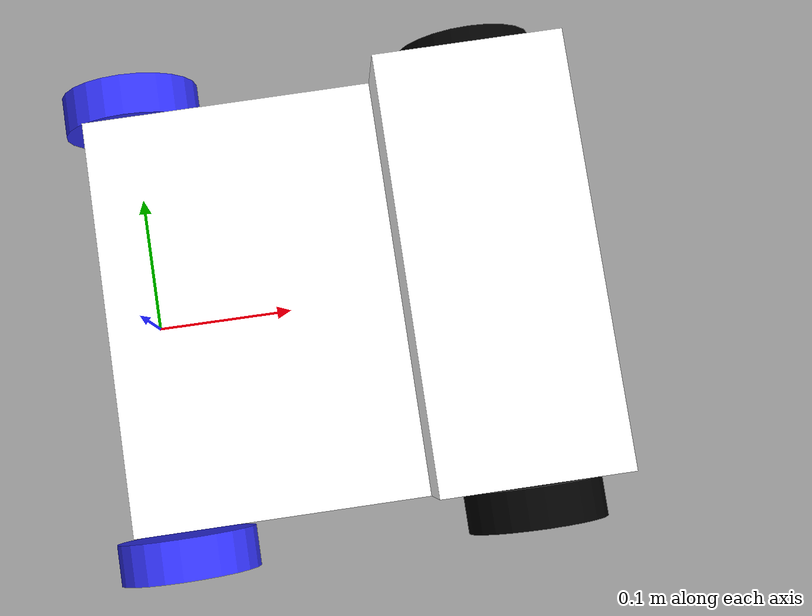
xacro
<?xml version="1.0"?>
<robot xmlns:xacro="http://www.ros.org/wiki/xacro">

    <xacro:include filename="inertial_macros.xacro" />

    <xacro:property name="chassis_mass" value="1.0"/>

    <!--color-->
    <material name="white">
        <color rgba="1 1 1 1" />
    </material>

    <material name="orange">
        <color rgba="1 0.3 0.1 1" />
    </material>

    <material name="blue">
        <color rgba="0.2 0.2 1 1" />
    </material>

    <material name="black">
        <color rgba="0 0 0 1" />
    </material>

    <material name="red">
        <color rgba="1 0 0 1" />
    </material>

    <!--Base link--> <!--1 khối hộp-->
    <link name="base_link">
        <visual>
            <origin xyz="0.14 0 0.015" rpy="0 0 0" />
            <geometry>
                <box size="0.34 0.3 0.09" />
            </geometry>
            <material name="white" />
        </visual>
        <collision>
            <origin xyz="0.14 0 0.015" rpy="0 0 0" />
            <geometry>
                <box size="0.34 0.3 0.09" />
            </geometry>
        </collision>
        <xacro:inertial_box mass="0.5" x="0.34" y="0.3" z="0.09"> <!--chỉnh sửa xyz-->
            <origin xyz="0.14 0 0.015" rpy="0 0 0" />   <!--đã chỉnh sửa xyz-->
        </xacro:inertial_box>
    </link>

    <!-- BASE_FOOTPRINT LINK -->

    <joint name="base_footprint_joint" type="fixed">
        <parent link="base_link"/>
        <child link="base_footprint"/>
        <origin xyz="0 0 0" rpy="0 0 0"/>
    </joint>

    <link name="base_footprint">
    </link>

    <!--Chasis-->
    <joint name="chassis_joint" type="fixed">
        <parent link="base_link" />
        <child link="chassis" />
        <origin xyz="-0.035 0 0" />
    </joint>

    <link name="chassis"> <!--khối trên-->
        <visual>
            <origin xyz="0.28 0 0.05" rpy="0 0 0" />
            <geometry>
                <box size="0.13 0.3 0.15" />
            </geometry>
            <material name="white" />
        </visual>
        <collision>
            <origin xyz="0.28 0 0.05" rpy="0 0 0" />
            <geometry>
                <box size="0.13 0.3 0.15" />
            </geometry>
        </collision>
        <xacro:inertial_box mass="0.5" x="0.13" y="0.3" z="0.15">
            <origin xyz="0.28 0 0.05" rpy="0 0 0" />
        </xacro:inertial_box>
    </link>

    <gazebo reference="chassis">
        <material>Gazebo/White</material>
    </gazebo>

    <!-- BACK_LEFT WHEEL -->

    <joint name="left_wheel_joint" type="continuous">
        <parent link="base_link" />
        <child link="left_wheel" />
        <origin xyz="0 0.17 0" rpy="-${pi/2} 0 0" />
        <axis xyz="0 0 1" />
    </joint>

    <link name="left_wheel">
        <visual>
            <geometry>
                <cylinder length="0.03" radius="0.052" />
            </geometry>
            <material name="blue" />
        </visual>
        <collision>
            <geometry>
                <cylinder length="0.03" radius="0.052" /> <!--??? sphere-->
            </geometry>
        </collision>
        <xacro:inertial_cylinder mass="0.180" length="0.03" radius="0.052" >
            <origin xyz="0 0 0" rpy="0 0 0" />
        </xacro:inertial_cylinder>
    </link>

    <gazebo reference="left_wheel">
        <material>Gazebo/Blue</material>
    </gazebo>

    <!-- BACK_RIGHT WHEEL -->
    <joint name="right_wheel_joint" type="continuous">
        <parent link="base_link" />
        <child link="right_wheel" />
        <origin xyz="0 -0.17 0" rpy="-${pi/2} 0 0" />
        <axis xyz="0 0 1" />
    </joint>

    <link name="right_wheel">
        <visual>
            <geometry>
                <cylinder length="0.03" radius="0.052" />
            </geometry>
            <material name="blue" />
        </visual>
        <collision>
            <geometry>
                <cylinder length="0.03" radius="0.052" />
            </geometry>
        </collision>
        <xacro:inertial_cylinder mass="0.180" length="0.03" radius="0.052" >
            <origin xyz="0 0 0" rpy="0 0 0" />
        </xacro:inertial_cylinder>
    </link>

    <gazebo reference="right_wheel">
        <material>Gazebo/Blue</material>
    </gazebo>

        <!-- FRONT_LEFT WHEEL -->
    <joint name="F_left_wheel_joint" type="fixed">

        <parent link="base_link" />

        <child link="F_left_wheel" />

        <origin xyz="0.26 0.17 0" rpy="${pi/2} 0 0" />

        <axis xyz="0 0 1" />

    </joint>

    <link name="F_left_wheel">

        <visual>

            <geometry>

                <cylinder length="0.03" radius="0.052" />

            </geometry>

            <material name="black" />

        </visual>

            <collision>

            <geometry>

                <cylinder length="0.03" radius="0.052" />

            </geometry>

            </collision>

            <xacro:inertial_cylinder mass="0.180" length="0.03" radius="0.052">

                <origin xyz="0 0 0" rpy="0 0 0" />

            </xacro:inertial_cylinder>

        </link>

        <gazebo reference="F_left_wheel">

            <material>Gazebo/Black</material>
            <mu1 value="0.001"/>
            <mu2 value="0.001"/>

        </gazebo>

<!-- FRONT_RIGHT WHEEL -->

    <joint name="F_right_wheel_joint" type="fixed">

        <parent link="base_link" />

        <child link="F_right_wheel" />

        <origin xyz="0.26 -0.17 0" rpy="${pi/2} 0 0" />

        <axis xyz="0 0 1" />

    </joint>

    <link name="F_right_wheel">

        <visual>

            <geometry>

                <cylinder length="0.03" radius="0.052" />

            </geometry>

                <material name="black" />

        </visual>

        <collision>

            <geometry>

                <cylinder length="0.03" radius="0.052" />

            </geometry>

        </collision>

        <xacro:inertial_cylinder mass="0.180" length="0.03" radius="0.052">

            <origin xyz="0 0 0" rpy="0 0 0" />

        </xacro:inertial_cylinder>

    </link>

    <gazebo reference="F_right_wheel">

        <material>Gazebo/Black</material>
        <mu1 value="0.001"/>
        <mu2 value="0.001"/>

    </gazebo>

    </robot>
